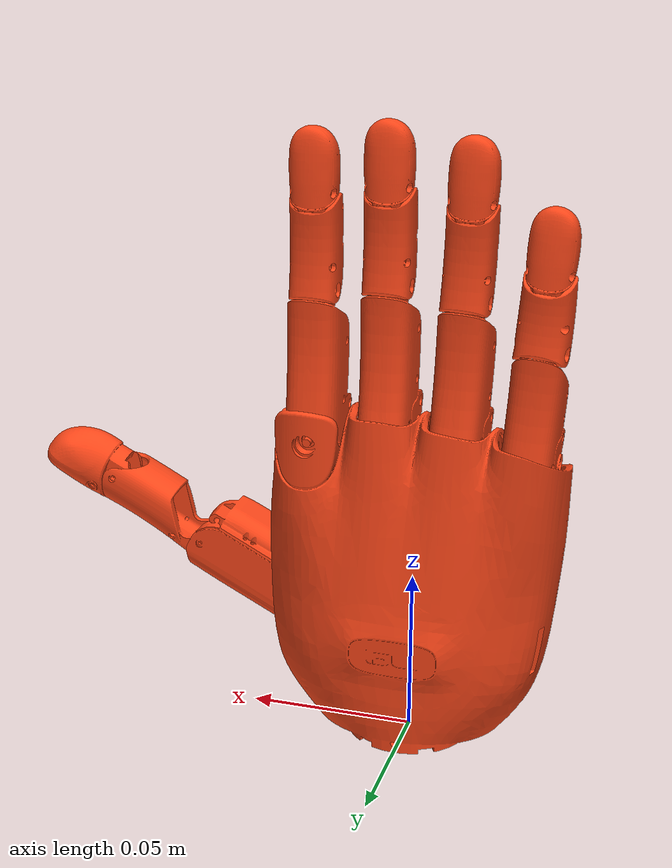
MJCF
<mujoco model="ghand5-right">
  <default>
    <default class="robot">
      <default class="motor">
        <joint />
        <motor />
      </default>
      <default class="visual">
        <geom material="visualgeom" contype="0" conaffinity="0" group="2" />
      </default>
      <default class="collision">
        <geom material="collision_material" condim="3" contype="0" conaffinity="1" priority="1" group="1" solref="0.005 1" solimp="0.99 0.999 1e-05" friction="1 0.01 0.01" />
      </default>
    </default>
  </default>

  <compiler angle="radian" />

  <asset>
    <material name="urdf_material" rgba="0.792156862745098 0.819607843137255 0.933333333333333 1" />
    <material name="default_material" rgba="0.7 0.7 0.7 1" />
    <material name="collision_material" rgba="1.0 0.28 0.1 0.9" />
    <mesh name="base_link.STL" file="ghand5_system/meshes/hands/visual/right/base_link.STL" />
    <mesh name="LF_MCP_link.STL" file="ghand5_system/meshes/hands/visual/right/LF_MCP_link.STL" />
    <mesh name="LF_PIP_link.STL" file="ghand5_system/meshes/hands/visual/right/LF_PIP_link.STL" />
    <mesh name="LF_DIP_link.STL" file="ghand5_system/meshes/hands/visual/right/LF_DIP_link.STL" />
    <mesh name="RF_MCP_link.STL" file="ghand5_system/meshes/hands/visual/right/RF_MCP_link.STL" />
    <mesh name="RF_PIP_link.STL" file="ghand5_system/meshes/hands/visual/right/RF_PIP_link.STL" />
    <mesh name="RF_DIP_link.STL" file="ghand5_system/meshes/hands/visual/right/RF_DIP_link.STL" />
    <mesh name="MF_MCP_link.STL" file="ghand5_system/meshes/hands/visual/right/MF_MCP_link.STL" />
    <mesh name="MF_PIP_link.STL" file="ghand5_system/meshes/hands/visual/right/MF_PIP_link.STL" />
    <mesh name="MF_DIP_link.STL" file="ghand5_system/meshes/hands/visual/right/MF_DIP_link.STL" />
    <mesh name="FF_MCP_AA_link.STL" file="ghand5_system/meshes/hands/visual/right/FF_MCP_AA_link.STL" />
    <mesh name="FF_MCP_link.STL" file="ghand5_system/meshes/hands/visual/right/FF_MCP_link.STL" />
    <mesh name="FF_PIP_link.STL" file="ghand5_system/meshes/hands/visual/right/FF_PIP_link.STL" />
    <mesh name="FF_DIP_link.STL" file="ghand5_system/meshes/hands/visual/right/FF_DIP_link.STL" />
    <mesh name="Thumb_TMC_PS_link.STL" file="ghand5_system/meshes/hands/visual/right/Thumb_TMC_PS_link.STL" />
    <mesh name="Thumb_TMC_AA_link.STL" file="ghand5_system/meshes/hands/visual/right/Thumb_TMC_AA_link.STL" />
    <mesh name="Thumb_TMC_FE_link.STL" file="ghand5_system/meshes/hands/visual/right/Thumb_TMC_FE_link.STL" />
    <mesh name="Thumb_MCP_link.STL" file="ghand5_system/meshes/hands/visual/right/Thumb_MCP_link.STL" />
    <mesh name="Thumb_IP_link.STL" file="ghand5_system/meshes/hands/visual/right/Thumb_IP_link.STL" />
  </asset>

  <worldbody>
    <body name="base_link" pos="0.00000000 0.00000000 0.00000000" quat="1 0 0 0" childclass="robot">
      <freejoint name="floating_base" />
      <geom name="base_link_collision" pos="0 0 0" quat="1.0 0.0 0.0 0.0" type="mesh" mesh="base_link.STL" class="collision" />
      <geom name="base_link_visual" pos="0 0 0" quat="1.0 0.0 0.0 0.0" material="urdf_material" type="mesh" mesh="base_link.STL" class="visual" />
      <body name="LF_MCP_link" pos="-0.034185 0.0010527 0.092671" quat="0.731211542517006 0.0 0.6821507751882282 0.0">
        <joint name="LF_MCP" type="hinge" ref="0.0" class="motor" range="0 1.5707963267949" axis="0 0 1" />
        <inertial pos="-0.0148714653082719 0.00503228360598384 3.88988564467389E-05" quat="1.0 0.0 0.0 0.0" mass="0.0264433801741145" diaginertia="1.12668646393785e-06 3.74496576715797e-06 3.38720577903523e-06" />
        <geom name="LF_MCP_link_collision" pos="0 0 0" quat="1.0 0.0 0.0 0.0" type="mesh" mesh="LF_MCP_link.STL" class="collision" />
        <geom name="LF_MCP_link_visual" pos="0 0 0" quat="1.0 0.0 0.0 0.0" material="urdf_material" type="mesh" mesh="LF_MCP_link.STL" class="visual" />
        <body name="LF_PIP_link" pos="-0.035829 0.0069671 0" quat="1.0 0.0 0.0 0.0">
          <joint name="LF_PIP" type="hinge" ref="0.0" class="motor" range="0 1.2915436464758" axis="0 0 1" />
          <inertial pos="-0.0097068390207721 -0.00148924633551032 3.25008649219756E-05" quat="1.0 0.0 0.0 0.0" mass="0.0106101494180424" diaginertia="3.90064134324655e-07 7.04951964281311e-07 4.68172618370353e-07" />
          <geom name="LF_PIP_link_collision" pos="0 0 0" quat="1.0 0.0 0.0 0.0" type="mesh" mesh="LF_PIP_link.STL" class="collision" />
          <geom name="LF_PIP_link_visual" pos="0 0 0" quat="1.0 0.0 0.0 0.0" material="urdf_material" type="mesh" mesh="LF_PIP_link.STL" class="visual" />
          <body name="LF_DIP_link" pos="-0.017923 -0.0052616 0" quat="1.0 0.0 0.0 0.0">
            <joint name="LF_DIP" type="hinge" ref="0.0" class="motor" range="0 1.5707963267949" axis="0 0 1" />
            <inertial pos="-0.0108225975388941 0.00329558485146861 6.71873393934264E-08" quat="1.0 0.0 0.0 0.0" mass="0.0178564975749226" diaginertia="3.42104582604646e-07 6.78587150944913e-07 5.82509349683866e-07" />
            <geom name="LF_DIP_link_collision" pos="0 0 0" quat="1.0 0.0 0.0 0.0" type="mesh" mesh="LF_DIP_link.STL" class="collision" />
            <geom name="LF_DIP_link_visual" pos="0 0 0" quat="1.0 0.0 0.0 0.0" material="urdf_material" type="mesh" mesh="LF_DIP_link.STL" class="visual" />
          </body>
        </body>
      </body>
      <body name="RF_MCP_link" pos="-0.013536 0.0010527 0.096396" quat="0.7198917367424786 0.0 0.6940863688114741 0.0">
        <joint name="RF_MCP" type="hinge" ref="0.0" class="motor" range="0 1.5707963267949" axis="0 0 1" />
        <inertial pos="-0.0200154438846792 0.00499783524834638 1.82089110935431E-05" quat="1.0 0.0 0.0 0.0" mass="0.0343124145280853" diaginertia="1.44654607301467e-06 5.95506883420712e-06 5.5067012402718e-06" />
        <geom name="RF_MCP_link_collision" pos="0 0 0" quat="1.0 0.0 0.0 0.0" type="mesh" mesh="RF_MCP_link.STL" class="collision" />
        <geom name="RF_MCP_link_visual" pos="0 0 0" quat="1.0 0.0 0.0 0.0" material="urdf_material" type="mesh" mesh="RF_MCP_link.STL" class="visual" />
        <body name="RF_PIP_link" pos="-0.044412 0.0070232 0" quat="1.0 0.0 0.0 0.0">
          <joint name="RF_PIP" type="hinge" ref="0.0" class="motor" range="0 1.5707963267949" axis="0 0 1" />
          <inertial pos="-0.0129146504315271 -0.00163014139965735 2.91803546564016E-05" quat="1.0 0.0 0.0 0.0" mass="0.014440256274874" diaginertia="4.79041612065652e-07 1.15969535072989e-06 9.20906233378606e-07" />
          <geom name="RF_PIP_link_collision" pos="0 0 0" quat="1.0 0.0 0.0 0.0" type="mesh" mesh="RF_PIP_link.STL" class="collision" />
          <geom name="RF_PIP_link_visual" pos="0 0 0" quat="1.0 0.0 0.0 0.0" material="urdf_material" type="mesh" mesh="RF_PIP_link.STL" class="visual" />
          <body name="RF_DIP_link" pos="-0.022986 -0.0050638 0" quat="1.0 0.0 0.0 0.0">
            <joint name="RF_DIP" type="hinge" ref="0.0" class="motor" range="0 1.5707963267949" axis="0 0 1" />
            <inertial pos="-0.010960500689851 0.00395375609705622 -1.36515418905012E-07" quat="1.0 0.0 0.0 0.0" mass="0.0185881209622168" diaginertia="3.65166569200714e-07 7.27839723666553e-07 6.40891415778403e-07" />
            <geom name="RF_DIP_link_collision" pos="0 0 0" quat="1.0 0.0 0.0 0.0" type="mesh" mesh="RF_DIP_link.STL" class="collision" />
            <geom name="RF_DIP_link_visual" pos="0 0 0" quat="1.0 0.0 0.0 0.0" material="urdf_material" type="mesh" mesh="RF_DIP_link.STL" class="visual" />
          </body>
        </body>
      </body>
      <body name="MF_MCP_link" pos="0.007228 0.0010527 0.099132" quat="0.7071067813199926 1.2986741116938205e-06 0.7071067810507172 1.2986741116383094e-06">
        <joint name="MF_MCP" type="hinge" ref="0.0" class="motor" range="0 1.5707963267949" axis="0 0 1" />
        <inertial pos="-0.020015657132935 0.00499700098081666 1.82312477741663E-05" quat="1.0 0.0 0.0 0.0" mass="0.0343123953862461" diaginertia="1.44653388682065e-06 5.95507602098445e-06 5.50669556045967e-06" />
        <geom name="MF_MCP_link_collision" pos="0 0 0" quat="1.0 0.0 0.0 0.0" type="mesh" mesh="MF_MCP_link.STL" class="collision" />
        <geom name="MF_MCP_link_visual" pos="0 0 0" quat="1.0 0.0 0.0 0.0" material="urdf_material" type="mesh" mesh="MF_MCP_link.STL" class="visual" />
        <body name="MF_PIP_link" pos="-0.044413 0.0070214 0" quat="1.0 0.0 0.0 0.0">
          <joint name="MF_PIP" type="hinge" ref="0.0" class="motor" range="0 1.5707963267949" axis="0 0 1" />
          <inertial pos="-0.0129145853484956 -0.00163067562965549 2.9179567707819E-05" quat="1.0 0.0 0.0 0.0" mass="0.014440252492985" diaginertia="4.79047400046214e-07 1.15968950499497e-06 9.20906207415852e-07" />
          <geom name="MF_PIP_link_collision" pos="0 0 0" quat="1.0 0.0 0.0 0.0" type="mesh" mesh="MF_PIP_link.STL" class="collision" />
          <geom name="MF_PIP_link_visual" pos="0 0 0" quat="1.0 0.0 0.0 0.0" material="urdf_material" type="mesh" mesh="MF_PIP_link.STL" class="visual" />
          <body name="MF_DIP_link" pos="-0.022986 -0.0050648 0" quat="1.0 0.0 0.0 0.0">
            <joint name="MF_DIP" type="hinge" ref="0.0" class="motor" range="0 1.5707963267949" axis="0 0 1" />
            <inertial pos="-0.0109606311312518 0.00395332931435218 -1.59377583372131E-07" quat="1.0 0.0 0.0 0.0" mass="0.0185881308582604" diaginertia="3.65159369510818e-07 7.27847573227014e-07 6.40890831314597e-07" />
            <geom name="MF_DIP_link_collision" pos="0 0 0" quat="1.0 0.0 0.0 0.0" type="mesh" mesh="MF_DIP_link.STL" class="collision" />
            <geom name="MF_DIP_link_visual" pos="0 0 0" quat="1.0 0.0 0.0 0.0" material="urdf_material" type="mesh" mesh="MF_DIP_link.STL" class="visual" />
          </body>
        </body>
      </body>
      <body name="FF_MCP_AA_link" pos="0.028566 0.013553 0.095927" quat="0.7071054825112363 0.7071080798594735 0.0 0.0">
        <joint name="FF_MCP_AA" type="hinge" ref="0.0" class="motor" range="-0.174532925199433 0.174532925199433" axis="0 0 -1" />
        <inertial pos="-1.61713798380037E-07 -0.000374611814496814 0.00649307088361358" quat="1.0 0.0 0.0 0.0" mass="0.00258839121321602" diaginertia="3.84640517480584e-08 5.98301094836961e-08 3.65467948056483e-08" />
        <geom name="FF_MCP_AA_link_collision" pos="0 0 0" quat="1.0 0.0 0.0 0.0" type="mesh" mesh="FF_MCP_AA_link.STL" class="collision" />
        <geom name="FF_MCP_AA_link_visual" pos="0 0 0" quat="1.0 0.0 0.0 0.0" material="urdf_material" type="mesh" mesh="FF_MCP_AA_link.STL" class="visual" />
        <body name="FF_MCP_link" pos="0 0 0.0125" quat="0.4999981633974483 -0.49999999999662686 0.5000018366025516 -0.49999999999662686">
          <joint name="FF_MCP" type="hinge" ref="0.0" class="motor" range="0 1.5707963267949" axis="0 0 1" />
          <inertial pos="-0.0203264267049536 0.00517149606041659 1.4901911354611E-05" quat="1.0 0.0 0.0 0.0" mass="0.0388429620559521" diaginertia="1.71064556799332e-06 6.34003203740085e-06 5.91606496421187e-06" />
          <geom name="FF_MCP_link_collision" pos="0 0 0" quat="1.0 0.0 0.0 0.0" type="mesh" mesh="FF_MCP_link.STL" class="collision" />
          <geom name="FF_MCP_link_visual" pos="0 0 0" quat="1.0 0.0 0.0 0.0" material="urdf_material" type="mesh" mesh="FF_MCP_link.STL" class="visual" />
          <body name="FF_PIP_link" pos="-0.044403 0.0070773 0" quat="1.0 0.0 0.0 0.0">
            <joint name="FF_PIP" type="hinge" ref="0.0" class="motor" range="0 1.39626340159546" axis="0 0 1" />
            <inertial pos="-0.0129209246996119 -0.00157965828614821 2.91720492550246E-05" quat="1.0 0.0 0.0 0.0" mass="0.0144402684934038" diaginertia="4.78507380757098e-07 1.16023213096375e-06 9.20907889027397e-07" />
            <geom name="FF_PIP_link_collision" pos="0 0 0" quat="1.0 0.0 0.0 0.0" type="mesh" mesh="FF_PIP_link.STL" class="collision" />
            <geom name="FF_PIP_link_visual" pos="0 0 0" quat="1.0 0.0 0.0 0.0" material="urdf_material" type="mesh" mesh="FF_PIP_link.STL" class="visual" />
            <body name="FF_DIP_link" pos="-0.023006 -0.0049739 0" quat="1.0 0.0 0.0 0.0">
              <joint name="FF_DIP" type="hinge" ref="0.0" class="motor" range="0 1.5707963267949" axis="0 0 1" />
              <inertial pos="-0.0109378103100737 0.00401604755829069 -1.48789861452447E-07" quat="1.0 0.0 0.0 0.0" mass="0.0185881017119488" diaginertia="3.66249322121008e-07 7.26755468132449e-07 6.4089089648744e-07" />
              <geom name="FF_DIP_link_collision" pos="0 0 0" quat="1.0 0.0 0.0 0.0" type="mesh" mesh="FF_DIP_link.STL" class="collision" />
              <geom name="FF_DIP_link_visual" pos="0 0 0" quat="1.0 0.0 0.0 0.0" material="urdf_material" type="mesh" mesh="FF_DIP_link.STL" class="visual" />
            </body>
          </body>
        </body>
      </body>
      <body name="Thumb_TMC_PS_link" pos="0.013492 -0.016547 0.0372" quat="0.7071054825112363 0.7071080798594735 0.0 0.0">
        <joint name="Thumb_TMC_PS" type="hinge" ref="0.0" class="motor" range="-0.174532925199433 1.0471975511966" axis="0 0 1" />
        <inertial pos="-0.00286579384018245 -8.14165588735039E-05 0.00727703884478214" quat="1.0 0.0 0.0 0.0" mass="0.050441684617305" diaginertia="1.02738403250133e-05 5.32993593590205e-06 1.34948360952034e-05" />
        <geom name="Thumb_TMC_PS_link_collision" pos="0 0 0" quat="1.0 0.0 0.0 0.0" type="mesh" mesh="Thumb_TMC_PS_link.STL" class="collision" />
        <geom name="Thumb_TMC_PS_link_visual" pos="0 0 0" quat="1.0 0.0 0.0 0.0" material="urdf_material" type="mesh" mesh="Thumb_TMC_PS_link.STL" class="visual" />
        <body name="Thumb_TMC_AA_link" pos="0.0038094 -0.0075994 0.0089" quat="0.4999981633974483 -0.49999999999662686 0.49999999999662686 0.5000018366025516">
          <joint name="Thumb_TMC_AA" type="hinge" ref="0.0" class="motor" range="0.349065850398866 1.5707963267949" axis="0 0 -1" />
          <inertial pos="0.000429256557170316 -0.0081985809982227 -0.0018889698513071" quat="1.0 0.0 0.0 0.0" mass="0.00783292793179758" diaginertia="2.2033705259923e-07 1.92376273377408e-07 3.71557184428904e-07" />
          <geom name="Thumb_TMC_AA_link_collision" pos="0 0 0" quat="1.0 0.0 0.0 0.0" type="mesh" mesh="Thumb_TMC_AA_link.STL" class="collision" />
          <geom name="Thumb_TMC_AA_link_visual" pos="0 0 0" quat="1.0 0.0 0.0 0.0" material="urdf_material" type="mesh" mesh="Thumb_TMC_AA_link.STL" class="visual" />
          <body name="Thumb_TMC_FE_link" pos="0 -0.016971 -0.0001353" quat="0.16106295879960641 0.6885186334521953 0.16106801693992273 0.6885186334521953">
            <joint name="Thumb_TMC_FE" type="hinge" ref="0.0" class="motor" range="0 0.872664625997165" axis="0 0 -1" />
            <inertial pos="-0.00349926354871747 0.0193706933165962 -4.15502449385256E-05" quat="1.0 0.0 0.0 0.0" mass="0.0655978679831151" diaginertia="1.71031458149851e-05 6.3721054469053e-06 1.33108986044732e-05" />
            <geom name="Thumb_TMC_FE_link_collision" pos="0 0 0" quat="1.0 0.0 0.0 0.0" type="mesh" mesh="Thumb_TMC_FE_link.STL" class="collision" />
            <geom name="Thumb_TMC_FE_link_visual" pos="0 0 0" quat="1.0 0.0 0.0 0.0" material="urdf_material" type="mesh" mesh="Thumb_TMC_FE_link.STL" class="visual" />
            <body name="Thumb_MCP_link" pos="-0.0067 0.0415 0" quat="-3.673205103346574e-06 0.0 -0.0 -0.9999999999932537">
              <joint name="Thumb_MCP" type="hinge" ref="0.0" class="motor" range="0 1.15191730631626" axis="0 0 -1" />
              <inertial pos="-0.00189957206408813 -0.0193191656464625 -1.5485936652359E-05" quat="1.0 0.0 0.0 0.0" mass="0.0211695183057074" diaginertia="2.97455165240941e-06 1.34602789019338e-06 2.72195996652612e-06" />
              <geom name="Thumb_MCP_link_collision" pos="0 0 0" quat="1.0 0.0 0.0 0.0" type="mesh" mesh="Thumb_MCP_link.STL" class="collision" />
              <geom name="Thumb_MCP_link_visual" pos="0 0 0" quat="1.0 0.0 0.0 0.0" material="urdf_material" type="mesh" mesh="Thumb_MCP_link.STL" class="visual" />
              <body name="Thumb_IP_link" pos="-0.0049669 -0.03505 0" quat="-4.259473209513296e-08 -0.011596066894287637 -0.9999327633491617 -3.6729581293623614e-06">
                <joint name="Thumb_IP" type="hinge" ref="0.0" class="motor" range="0 1.5707963267949" axis="0 0 1" />
                <inertial pos="-0.00225412538400287 -0.010722713724769 -4.31535807393843E-05" quat="1.0 0.0 0.0 0.0" mass="0.0339937040774307" diaginertia="1.88201119626116e-06 1.03311847359096e-06 1.61436170150998e-06" />
                <geom name="Thumb_IP_link_collision" pos="0 0 0" quat="1.0 0.0 0.0 0.0" type="mesh" mesh="Thumb_IP_link.STL" class="collision" />
                <geom name="Thumb_IP_link_visual" pos="0 0 0" quat="1.0 0.0 0.0 0.0" material="urdf_material" type="mesh" mesh="Thumb_IP_link.STL" class="visual" />
              </body>
            </body>
          </body>
        </body>
      </body>
      <site name="base_link_site" pos="0 0 0" quat="1 0 0 0" />
      <camera name="front_camera" mode="track" fovy="90.0" quat="4.329637285359678e-17 4.329637285359677e-17 0.7071067811865475 0.7071067811865476" pos="0.0 2.0 0.5" />
      <camera name="side_camera" mode="track" fovy="90.0" quat="-0.5 -0.4999999999999999 0.5 0.5000000000000001" pos="-2.0 0.0 0.5" />
    </body>
  </worldbody>

  <actuator>
    <motor name="LF_MCP_ctrl" joint="LF_MCP" class="motor" />
    <motor name="LF_PIP_ctrl" joint="LF_PIP" class="motor" />
    <motor name="LF_DIP_ctrl" joint="LF_DIP" class="motor" />
    <motor name="RF_MCP_ctrl" joint="RF_MCP" class="motor" />
    <motor name="RF_PIP_ctrl" joint="RF_PIP" class="motor" />
    <motor name="RF_DIP_ctrl" joint="RF_DIP" class="motor" />
    <motor name="MF_MCP_ctrl" joint="MF_MCP" class="motor" />
    <motor name="MF_PIP_ctrl" joint="MF_PIP" class="motor" />
    <motor name="MF_DIP_ctrl" joint="MF_DIP" class="motor" />
    <motor name="FF_MCP_AA_ctrl" joint="FF_MCP_AA" class="motor" />
    <motor name="FF_MCP_ctrl" joint="FF_MCP" class="motor" />
    <motor name="FF_PIP_ctrl" joint="FF_PIP" class="motor" />
    <motor name="FF_DIP_ctrl" joint="FF_DIP" class="motor" />
    <motor name="Thumb_TMC_PS_ctrl" joint="Thumb_TMC_PS" class="motor" />
    <motor name="Thumb_TMC_AA_ctrl" joint="Thumb_TMC_AA" class="motor" />
    <motor name="Thumb_TMC_FE_ctrl" joint="Thumb_TMC_FE" class="motor" />
    <motor name="Thumb_MCP_ctrl" joint="Thumb_MCP" class="motor" />
    <motor name="Thumb_IP_ctrl" joint="Thumb_IP" class="motor" />
  </actuator>

  <contact>
    <exclude body1="base_link" body2="LF_MCP_link" />
    <exclude body1="LF_MCP_link" body2="LF_PIP_link" />
    <exclude body1="LF_PIP_link" body2="LF_DIP_link" />
    <exclude body1="base_link" body2="RF_MCP_link" />
    <exclude body1="RF_MCP_link" body2="RF_PIP_link" />
    <exclude body1="RF_PIP_link" body2="RF_DIP_link" />
    <exclude body1="base_link" body2="MF_MCP_link" />
    <exclude body1="MF_MCP_link" body2="MF_PIP_link" />
    <exclude body1="MF_PIP_link" body2="MF_DIP_link" />
    <exclude body1="base_link" body2="FF_MCP_AA_link" />
    <exclude body1="FF_MCP_AA_link" body2="FF_MCP_link" />
    <exclude body1="FF_MCP_link" body2="FF_PIP_link" />
    <exclude body1="FF_PIP_link" body2="FF_DIP_link" />
    <exclude body1="base_link" body2="Thumb_TMC_PS_link" />
    <exclude body1="Thumb_TMC_PS_link" body2="Thumb_TMC_AA_link" />
    <exclude body1="Thumb_TMC_AA_link" body2="Thumb_TMC_FE_link" />
    <exclude body1="Thumb_TMC_FE_link" body2="Thumb_MCP_link" />
    <exclude body1="Thumb_MCP_link" body2="Thumb_IP_link" />
  </contact>

  <sensor>
    <framepos name="base_link_site_pos" objtype="site" objname="base_link_site" />
    <framequat name="base_link_site_quat" objtype="site" objname="base_link_site" />
    <framelinvel name="base_link_site_linvel" objtype="site" objname="base_link_site" />
    <frameangvel name="base_link_site_angvel" objtype="site" objname="base_link_site" />
    <velocimeter name="base_link_site_vel" site="base_link_site" />
  </sensor>
</mujoco>
